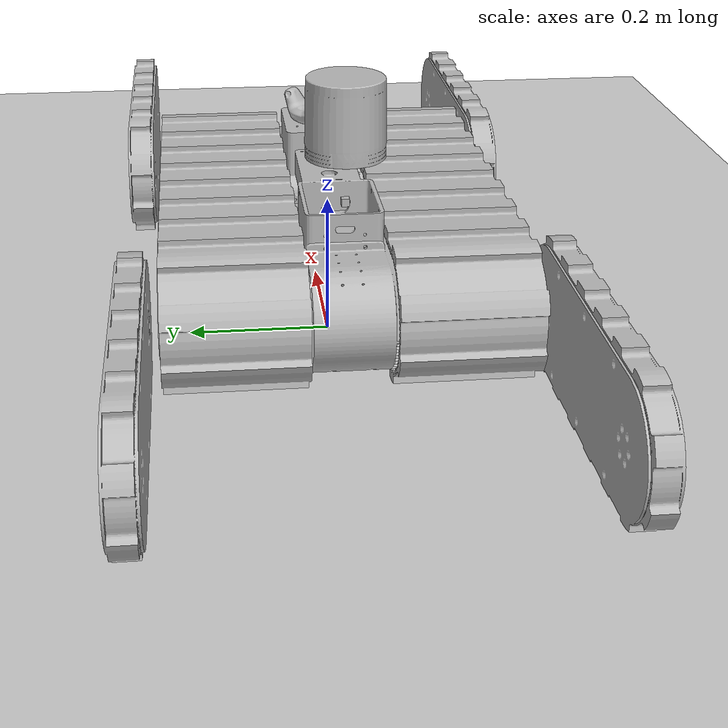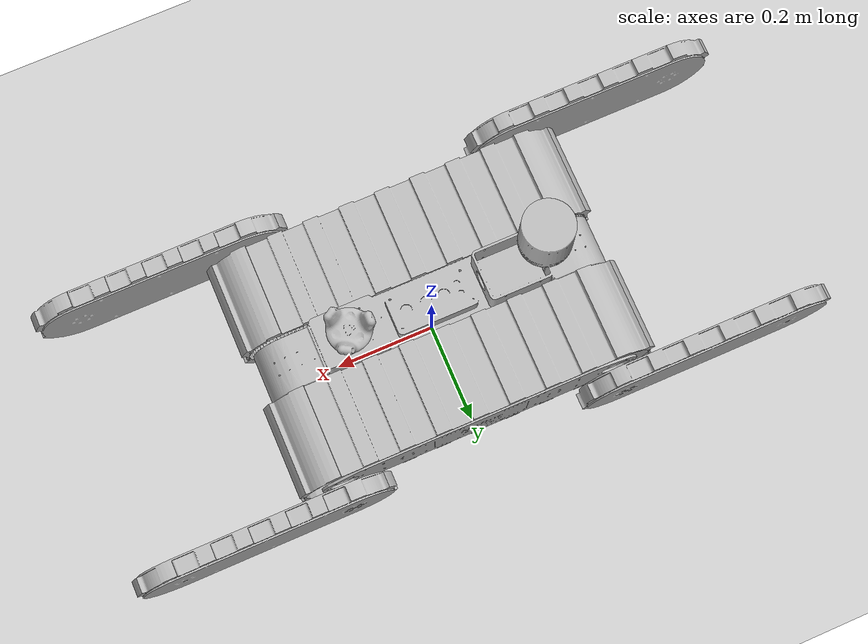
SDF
<sdf version="1.6">
 <world name="NuBot_Pumbaa_labfield">
  <include><uri>model://sun</uri></include>
  <include><uri>model://ground_plane</uri></include>
  <model name="NuBot_Pumbaa_v2">
   <pose>0 0 0.15 0 0 0</pose>
   <include><uri>model://NuBot_Pumbaa_v2</uri></include>
   <include><uri>model://RS_Helios_5515</uri><pose>-0.221 0 0.2545 0 0 3.1416</pose></include>
   <joint name="lidar_joint" type="fixed">
    <parent>NuBot_Pumbaa_v2::base_link</parent>
    <child>RS_Helios_5515::base_link</child>
   </joint>
   <include><uri>model://IMU</uri><pose>-0.221 0 0.131 0 0 3.1416</pose></include>
   <joint name="imu_joint" type="fixed">
    <parent>NuBot_Pumbaa_v2::base_link</parent>
    <child>IMU::base_link</child>
   </joint>
  </model>
 </world>
</sdf>

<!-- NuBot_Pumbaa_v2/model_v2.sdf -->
<sdf version='1.6'>
  <model name='NuBot_Pumbaa_v2'>
    <static>false</static>
    <allow_auto_disable>1</allow_auto_disable>

    <!--base_link-->
    <link name='base_link'>
      <pose frame=''>0 0 0 0 0 0</pose>
      <inertial>
        <pose frame=''>0 0 0 0 0 0</pose>
        <mass>20</mass>
        <inertia>
          <ixx>0.203664</ixx>
          <ixy>0</ixy>
          <ixz>0</ixz>
          <iyy>0.136197</iyy>
          <iyz>0</iyz>
          <izz>0.319921</izz>
        </inertia>
      </inertial>
      <self_collide>0</self_collide>
      <gravity>1</gravity>
      <kinematic>0</kinematic>
      <enable_wind>0</enable_wind>

      <collision name='base_link_collision_1'>
        <max_contacts>10</max_contacts>
        <pose frame=''>0.276 0 0 1.5708 0 0</pose>
        <geometry>
          <cylinder>
            <radius>0.07</radius>
            <length>0.11</length>
          </cylinder>
        </geometry>
        <surface>
          <friction>
            <ode>
              <mu>1</mu>
              <mu2>1</mu2>
              <fdir1>0 1 0</fdir1>
            </ode>
          </friction>
        </surface>
      </collision>
      <collision name='base_link_collision_2'>
        <max_contacts>10</max_contacts>
        <pose frame=''>-0.276 0 0 1.5708 0 0</pose>
        <geometry>
          <cylinder>
            <radius>0.07</radius>
            <length>0.11</length>
          </cylinder>
        </geometry>
        <surface>
          <friction>
            <ode>
              <mu>1</mu>
              <mu2>1</mu2>
              <fdir1>0 1 0</fdir1>
            </ode>
          </friction>
        </surface>
      </collision>
      <collision name='base_link_collision'>
        <max_contacts>10</max_contacts>
        <pose frame=''>0 0 0 1.5708 0 1.5708</pose>
        <geometry>
          <box>
            <size>0.11 0.14 0.552</size>
          </box>
        </geometry>
        <surface>
          <friction>
            <ode>
              <mu>1</mu>
              <mu2>1</mu2>
              <fdir1>0 1 0</fdir1>
            </ode>
          </friction>
        </surface>
      </collision>
      <visual name='base_link_visual'>
        <pose frame=''>0 0 0 0 0 0</pose>
        <geometry>
          <mesh>
            <scale>1 1 1</scale>
            <uri>model://NuBot_Pumbaa_v2/meshes/base_link.STL</uri>
          </mesh>
        </geometry>
      </visual>
      <visual name='base_link_vive_link_visual'>
        <pose frame=''>0.16175 0 0.138 0 0 0</pose>
        <geometry>
          <mesh>
            <scale>1 1 1</scale>
            <uri>model://NuBot_Pumbaa_v2/meshes/vive_link.STL</uri>
          </mesh>
        </geometry>
      </visual>
    </link>

    <!--left_track-->
    <link name='left_track_link'>
      <pose frame=''>0 0.14 0 0 0 0</pose>
      <inertial>
        <pose frame=''>0 0 0 0 0 0</pose>
        <mass>10</mass>
        <inertia>
          <ixx>0.15</ixx>
          <ixy>0</ixy>
          <ixz>0</ixz>
          <iyy>0.9</iyy>
          <iyz>0</iyz>
          <izz>0.9</izz>
        </inertia>
      </inertial>>
      <gravity>1</gravity>
      <kinematic>0</kinematic>
      <self_collide>0</self_collide>
      <enable_wind>0</enable_wind>

      <visual name='left_track_visual'>
        <pose frame=''>0 -0.14 0 0 0 0</pose>
        <geometry>
          <mesh>
            <scale>1 1 1</scale>
            <uri>model://NuBot_Pumbaa_v2/meshes/left_track_link.STL</uri>
          </mesh>
        </geometry>>
      </visual>
      <collision name='left_track_collision_1'>
        <max_contacts>10</max_contacts>
        <pose frame=''>0.276 0 0 1.5708 0 0</pose>
        <geometry>
          <cylinder>
            <radius>0.09</radius>
            <length>0.18</length>
          </cylinder>
        </geometry>
        <surface>
          <friction>
            <ode>
              <mu>0.7</mu>
              <mu2>150</mu2>
              <fdir1>0 1 0</fdir1>
            </ode>
          </friction>
        </surface>
      </collision>
      <collision name='left_track_collision_2'>
        <max_contacts>10</max_contacts>
        <pose frame=''>-0.276 0 0 1.5708 0 0</pose>
        <geometry>
          <cylinder>
            <radius>0.09</radius>
            <length>0.18</length>
          </cylinder>
        </geometry>
        <surface>
          <friction>
            <ode>
              <mu>0.7</mu>
              <mu2>150</mu2>
              <fdir1>0 1 0</fdir1>
            </ode>
          </friction>
        </surface>
      </collision>
      <collision name='left_track_collision'>
        <max_contacts>10</max_contacts>
        <pose frame=''>0 0 0 1.5708 0 1.5708</pose>
        <geometry>
          <box>
            <size>0.18 0.18 0.552</size>
          </box>
        </geometry>
        <surface>
          <friction>
            <ode>
              <mu>0.7</mu>
              <mu2>150</mu2>
              <fdir1>0 1 0</fdir1>
            </ode>
          </friction>
        </surface>
      </collision>
    </link>

    <!--right_track-->
    <link name='right_track_link'>
      <pose frame=''>0 -0.14 0 0 0 0</pose>
      <inertial>
        <pose frame=''>0 0 0 0 0 0</pose>
        <mass>10</mass>
        <inertia>
          <ixx>0.15</ixx>
          <ixy>0</ixy>
          <ixz>0</ixz>
          <iyy>0.9</iyy>
          <iyz>0</iyz>
          <izz>0.9</izz>
        </inertia>
      </inertial>
      <gravity>1</gravity>
      <kinematic>0</kinematic>
      <self_collide>0</self_collide>
      <enable_wind>0</enable_wind>

      <visual name='right_track_visual'>
        <pose frame=''>0 0.14 0 0 0 0</pose>
        <geometry>
          <mesh>
            <scale>1 1 1</scale>
            <uri>model://NuBot_Pumbaa_v2/meshes/right_track_link.STL</uri>
          </mesh>
        </geometry>
      </visual>
      <collision name='right_track_collision_1'>
        <max_contacts>10</max_contacts>
        <pose frame=''>0.276 0 0 1.5708 0 0</pose>
        <geometry>
          <cylinder>
            <radius>0.09</radius>
            <length>0.18</length>
          </cylinder>
        </geometry>
        <surface>
          <friction>
            <ode>
              <mu>0.7</mu>
              <mu2>150</mu2>
              <fdir1>0 1 0</fdir1>
            </ode>
          </friction>
        </surface>
      </collision>
      <collision name='right_track_collision'>
        <max_contacts>10</max_contacts>
        <pose frame=''>0 0 0 1.5708 0 1.5708</pose>
        <geometry>
          <box>
            <size>0.18 0.18 0.552</size>
          </box>
        </geometry>
        <surface>
          <friction>
            <ode>
              <mu>0.7</mu>
              <mu2>150</mu2>
              <fdir1>0 1 0</fdir1>
            </ode>
          </friction>
        </surface>
      </collision>
      <collision name='right_track_collision_2'>
        <max_contacts>10</max_contacts>
        <pose frame=''>-0.276 0 0 1.5708 0 0</pose>
        <geometry>
          <cylinder>
            <radius>0.09</radius>
            <length>0.18</length>
          </cylinder>
        </geometry>
        <surface>
          <friction>
            <ode>
              <mu>0.7</mu>
              <mu2>150</mu2>
              <fdir1>0 1 0</fdir1>
            </ode>
          </friction>
        </surface>
      </collision>
    </link>

    <!--main_track joints-->
    <joint name='left_track_joint' type='fixed'>
      <parent>base_link</parent>
      <child>left_track_link</child>
    </joint>
    <joint name='right_track_joint' type='fixed'>
      <parent>base_link</parent>
      <child>right_track_link</child>
    </joint>

    <!--rear_left_flipper-->
    <link name='rear_left_flipper_link'>
      <pose frame=''>-0.276 0.25 0 0 0 0</pose>
      <inertial>
        <pose frame=''>-0.16867 0.015987 0 0 0 0</pose>
        <mass>2.5</mass>
        <inertia>
          <ixx>0.002449</ixx>
          <ixy>0</ixy>
          <ixz>0</ixz>
          <iyy>0.02168</iyy>
          <iyz>0</iyz>
          <izz>0.019288</izz>
        </inertia>
      </inertial>
      <gravity>1</gravity>
      <velocity_decay/>
      <self_collide>0</self_collide>
      <kinematic>0</kinematic>
      <enable_wind>0</enable_wind>

      <collision name='rear_left_flipper_collision_large_wheel_collision'>
        <max_contacts>20</max_contacts>
        <pose frame=''>0 0.016 0 1.5708 0 0</pose>
        <geometry>
          <cylinder>
            <radius>0.09</radius>
            <length>0.038</length>
          </cylinder>
        </geometry>
        <surface>
          <friction>
            <ode>
              <mu>0.7</mu>
              <mu2>150</mu2>
              <fdir1>0 1 0</fdir1>
            </ode>
          </friction>
        </surface>
      </collision>
      <collision name='rear_left_flipper_collision_small_wheel_collision'>
        <max_contacts>20</max_contacts>
        <pose frame=''>-0.336 0.016 0 1.5708 0 0</pose>
        <geometry>
          <cylinder>
            <radius>0.09</radius>
            <length>0.038</length>
          </cylinder>
        </geometry>
        <surface>
          <friction>
            <ode>
              <mu>0.7</mu>
              <mu2>150</mu2>
              <fdir1>0 1 0</fdir1>
            </ode>
          </friction>
        </surface>
      </collision>
      <collision name='rear_left_flipper_collision_middle_bar_collision'>
        <max_contacts>20</max_contacts>
        <pose frame=''>-0.168 0.016 0 0 0 0</pose>
        <geometry>
          <box>
            <size>0.336 0.038 0.18</size>
          </box>
        </geometry>
        <surface>
          <friction>
            <ode>
              <mu>0.7</mu>
              <mu2>150</mu2>
              <fdir1>0 1 0</fdir1>
            </ode>
          </friction>
        </surface>
      </collision>
      <visual name='rear_left_flipper_visual'>
        <pose frame=''>0 0 0 0 0 0</pose>
        <geometry>
          <mesh>
            <scale>1 1 1</scale>
            <uri>model://NuBot_Pumbaa_v2/meshes/back_left_fin_link.STL</uri>
          </mesh>
        </geometry>
      </visual>
    </link>
    <joint name='rear_left_flipper_joint' type='revolute'>
      <child>rear_left_flipper_link</child>
      <parent>base_link</parent>
      <pose frame=''>0 0 0 0 0 0</pose>
      <axis>
        <xyz>0 1 0</xyz>
        <limit>
          <lower>-3</lower>
          <upper>3</upper>
          <effort>-1</effort>
          <velocity>0.3</velocity>
        </limit>
        <dynamics>
          <spring_reference>0</spring_reference>
          <spring_stiffness>0</spring_stiffness>
          <damping>10</damping>
          <friction>0</friction>
        </dynamics>
        <use_parent_model_frame>1</use_parent_model_frame>
      </axis>
      <physics>
        <ode>
          <implicit_spring_damper>1</implicit_spring_damper>
          <cfm_damping>1</cfm_damping>
          <limit>
            <cfm>0</cfm>
            <erp>0.2</erp>
          </limit>
        </ode>
      </physics>
    </joint>

    <!--rear_right_flipper-->
    <link name='rear_right_flipper_link'>
      <pose frame=''>-0.276 -0.25 0 0 0 0</pose>
      <inertial>
        <pose frame=''>-0.16867 -0.015987 0 0 0 0</pose>
        <mass>2.5</mass>
        <inertia>
          <ixx>0.002449</ixx>
          <ixy>0</ixy>
          <ixz>0</ixz>
          <iyy>0.02168</iyy>
          <iyz>0</iyz>
          <izz>0.019288</izz>
        </inertia>
      </inertial>
      <gravity>1</gravity>
      <velocity_decay/>
      <self_collide>1</self_collide>
      <kinematic>0</kinematic>
      <enable_wind>0</enable_wind>

      <collision name='rear_right_flipper_collision_large_wheel_collision'>
        <max_contacts>20</max_contacts>
        <pose frame=''>0 -0.016 0 1.5708 0 0</pose>
        <geometry>
          <cylinder>
            <radius>0.09</radius>
            <length>0.038</length>
          </cylinder>
        </geometry>
        <surface>
          <friction>
            <ode>
              <mu>0.7</mu>
              <mu2>150</mu2>
              <fdir1>0 1 0</fdir1>
            </ode>
          </friction>
        </surface>
      </collision>
      <collision name='rear_right_flipper_collision_small_wheel_collision'>
        <max_contacts>20</max_contacts>
        <pose frame=''>-0.336 -0.016 0 1.5708 0 0</pose>
        <geometry>
          <cylinder>
            <radius>0.09</radius>
            <length>0.038</length>
          </cylinder>
        </geometry>
        <surface>
          <friction>
            <ode>
              <mu>0.7</mu>
              <mu2>150</mu2>
              <fdir1>0 1 0</fdir1>
            </ode>
          </friction>
        </surface>
      </collision>
      <collision name='rear_right_flipper_collision_middle_bar_collision'>
        <max_contacts>20</max_contacts>
        <pose frame=''>-0.168 -0.016 0 0 0 -3.1416</pose>
        <geometry>
          <box>
            <size>0.336 0.038 0.18</size>
          </box>
        </geometry>
        <surface>
          <friction>
            <ode>
              <mu>0.7</mu>
              <mu2>150</mu2>
              <fdir1>0 1 0</fdir1>
            </ode>
          </friction>
        </surface>
      </collision>
      <visual name='rear_right_flipper_visual'>
        <pose frame=''>0 0 0 0 0 0</pose>
        <geometry>
          <mesh>
            <scale>1 1 1</scale>
            <uri>model://NuBot_Pumbaa_v2/meshes/back_right_fin_link.STL</uri>
          </mesh>
        </geometry>
      </visual>
    </link>
    <joint name='rear_right_flipper_joint' type='revolute'>
      <child>rear_right_flipper_link</child>
      <parent>base_link</parent>
      <pose frame=''>0 0 0 0 0 0</pose>
      <axis>
        <xyz>0 1 0</xyz>
        <limit>
          <lower>-3</lower>
          <upper>3</upper>
          <effort>-1</effort>
          <velocity>0.3</velocity>
        </limit>
        <dynamics>
          <spring_reference>0</spring_reference>
          <spring_stiffness>0</spring_stiffness>
          <damping>10</damping>
          <friction>0</friction>
        </dynamics>
        <use_parent_model_frame>1</use_parent_model_frame>
      </axis>
      <physics>
        <ode>
          <implicit_spring_damper>1</implicit_spring_damper>
          <cfm_damping>1</cfm_damping>
          <limit>
            <cfm>0</cfm>
            <erp>0.2</erp>
          </limit>
        </ode>
      </physics>
    </joint>

    <!--front_left_flipper-->
    <link name='front_left_flipper_link'>
      <pose frame=''>0.276 0.25 0 0 0 0</pose>
      <inertial>
        <pose frame=''>0.16867 0.015987 0 0 0 0</pose>
        <mass>2.5</mass>
        <inertia>
          <ixx>0.002449</ixx>
          <ixy>0</ixy>
          <ixz>0</ixz>
          <iyy>0.02168</iyy>
          <iyz>0</iyz>
          <izz>0.019288</izz>
        </inertia>
      </inertial>
      <gravity>1</gravity>
      <velocity_decay/>
      <self_collide>1</self_collide>
      <kinematic>0</kinematic>
      <enable_wind>0</enable_wind>

      <collision name='front_left_flipper_collision_large_wheel_collision'>
        <max_contacts>20</max_contacts>
        <pose frame=''>0 0.016 0 1.5708 0 0</pose>
        <geometry>
          <cylinder>
            <radius>0.09</radius>
            <length>0.038</length>
          </cylinder>
        </geometry>
        <surface>
          <friction>
            <ode>
              <mu>0.7</mu>
              <mu2>150</mu2>
              <fdir1>0 1 0</fdir1>
            </ode>
          </friction>
        </surface>
      </collision>
      <collision name='front_left_flipper_collision_small_wheel_collision'>
        <max_contacts>20</max_contacts>
        <pose frame=''>0.336 0.016 0 1.5708 0 0</pose>
        <geometry>
          <cylinder>
            <radius>0.09</radius>
            <length>0.038</length>
          </cylinder>
        </geometry>
        <surface>
          <friction>
            <ode>
              <mu>0.7</mu>
              <mu2>150</mu2>
              <fdir1>0 1 0</fdir1>
            </ode>
          </friction>
        </surface>
      </collision>
      <collision name='front_left_flipper_collision_middle_bar_collision'>
        <max_contacts>20</max_contacts>
        <pose frame=''>0.168 0.016 0 0 0 0</pose>
        <geometry>
          <box>
            <size>0.336 0.038 0.18</size>
          </box>
        </geometry>
        <surface>
          <friction>
            <ode>
              <mu>0.7</mu>
              <mu2>150</mu2>
              <fdir1>0 1 0</fdir1>
            </ode>
          </friction>
        </surface>
      </collision>
      <visual name='front_left_flipper_visual'>
        <pose frame=''>0 0 0 0 0 0</pose>
        <geometry>
          <mesh>
            <scale>1 1 1</scale>
            <uri>model://NuBot_Pumbaa_v2/meshes/front_left_fin_link.STL</uri>
          </mesh>
        </geometry>
      </visual>
    </link>
    <joint name='front_left_flipper_joint' type='revolute'>
      <child>front_left_flipper_link</child>
      <parent>base_link</parent>
      <pose frame=''>0 0 0 0 0 0</pose>
      <axis>
        <xyz>0 1 0</xyz>
        <limit>
          <lower>-3</lower>
          <upper>3</upper>
          <effort>-1</effort>
          <velocity>0.3</velocity>
        </limit>
        <dynamics>
          <spring_reference>0</spring_reference>
          <spring_stiffness>0</spring_stiffness>
          <damping>10</damping>
          <friction>0</friction>
        </dynamics>
        <use_parent_model_frame>1</use_parent_model_frame>
      </axis>
      <physics>
        <ode>
          <implicit_spring_damper>1</implicit_spring_damper>
          <cfm_damping>1</cfm_damping>
          <limit>
            <cfm>0</cfm>
            <erp>0.2</erp>
          </limit>
        </ode>
      </physics>
    </joint>

    <!--front_right_flipper-->
    <link name='front_right_flipper_link'>
      <pose frame=''>0.276 -0.25 0 0 0 0</pose>
      <inertial>
        <pose frame=''>0.16867 -0.015987 0 0 0 0</pose>
        <mass>2.5</mass>
        <inertia>
          <ixx>0.002449</ixx>
          <ixy>0</ixy>
          <ixz>0</ixz>
          <iyy>0.02168</iyy>
          <iyz>0</iyz>
          <izz>0.019288</izz>
        </inertia>
      </inertial>
      <gravity>1</gravity>
      <velocity_decay/>
      <self_collide>1</self_collide>
      <kinematic>0</kinematic>
      <enable_wind>0</enable_wind>

      <collision name='front_right_flipper_collision_large_wheel_collision'>
        <max_contacts>20</max_contacts>
        <pose frame=''>0 -0.016 0 1.5708 0 0</pose>
        <geometry>
          <cylinder>
            <radius>0.09</radius>
            <length>0.038</length>
          </cylinder>
        </geometry>
        <surface>
          <friction>
            <ode>
              <mu>0.7</mu>
              <mu2>150</mu2>
              <fdir1>0 1 0</fdir1>
            </ode>
          </friction>
        </surface>
      </collision>
      <collision name='front_right_flipper_collision_small_wheel_collision'>
        <max_contacts>20</max_contacts>
        <pose frame=''>0.336 -0.016 0 1.5708 0 0</pose>
        <geometry>
          <cylinder>
            <radius>0.09</radius>
            <length>0.038</length>
          </cylinder>
        </geometry>
        <surface>
          <friction>
            <ode>
              <mu>0.7</mu>
              <mu2>150</mu2>
              <fdir1>0 1 0</fdir1>
            </ode>
          </friction>
        </surface>
      </collision>
      <collision name='front_right_flipper_collision_middle_bar_collision'>
        <max_contacts>20</max_contacts>
        <pose frame=''>0.168 -0.016 0 0 0 -3.1416</pose>
        <geometry>
          <box>
            <size>0.336 0.038 0.18</size>
          </box>
        </geometry>
        <surface>
          <friction>
            <ode>
              <mu>0.7</mu>
              <mu2>150</mu2>
              <fdir1>0 1 0</fdir1>
            </ode>
          </friction>
        </surface>
      </collision>
      <visual name='front_right_flipper_link_visual'>
        <pose frame=''>0 0 0 0 0 0</pose>
        <geometry>
          <mesh>
            <scale>1 1 1</scale>
            <uri>model://NuBot_Pumbaa_v2/meshes/front_right_fin_link.STL</uri>
          </mesh>
        </geometry>
      </visual>
    </link>
    <joint name='front_right_flipper_joint' type='revolute'>
      <child>front_right_flipper_link</child>
      <parent>base_link</parent>
      <pose frame=''>0 0 0 0 0 0</pose>
      <axis>
        <xyz>0 1 0</xyz>
        <limit>
          <lower>-3</lower>
          <upper>3</upper>
          <effort>-1</effort>
          <velocity>0.3</velocity>
        </limit>
        <dynamics>
          <spring_reference>0</spring_reference>
          <spring_stiffness>0</spring_stiffness>
          <damping>10</damping>
          <friction>0</friction>
        </dynamics>
        <use_parent_model_frame>1</use_parent_model_frame>
      </axis>
      <physics>
        <ode>
          <implicit_spring_damper>1</implicit_spring_damper>
          <cfm_damping>1</cfm_damping>
          <limit>
            <cfm>0</cfm>
            <erp>0.2</erp>
          </limit>
        </ode>
      </physics>
    </joint>

    <plugin name='NuBot_Pumbaa_Gazebo_Plugin' filename='libnubot_pumbaa_plugin.so'>
      <!--The link tags of tracks-->
      <body>base_link</body>
      <left_track>left_track_link</left_track>
      <right_track>right_track_link</right_track>
      <left_flipper>front_left_flipper_link</left_flipper>
      <left_flipper>rear_left_flipper_link</left_flipper>
      <right_flipper>front_right_flipper_link</right_flipper>
      <right_flipper>rear_right_flipper_link</right_flipper>
      <!--The flippers' joint tag-->
      <front_left_flipper_j>front_left_flipper_joint</front_left_flipper_j>
      <rear_left_flipper_j>rear_left_flipper_joint</rear_left_flipper_j>
      <front_right_flipper_j>front_right_flipper_joint</front_right_flipper_j>
      <rear_right_flipper_j>rear_right_flipper_joint</rear_right_flipper_j>
      <!--The Mu/Mu2 of tracks, which influnce the simulating performance-->
      <track_mu>2</track_mu>
      <track_mu2>0.5</track_mu2>
      <!--The PID parameter of flippers position controll & initial position 1.5708 -->
      <flip_p>1500</flip_p>
      <flip_i>100</flip_i>
      <flip_d>0</flip_d>
      <flip_initial>1.0472</flip_initial>
      <!--The parameters of tracks-->
      <tracksSeparation>0.285</tracksSeparation>
      <steeringEfficiency>0.5</steeringEfficiency>
      <maxLinearSpeed>2.0</maxLinearSpeed>
      <maxAngularSpeed>1.5</maxAngularSpeed>
    </plugin>
  </model>
</sdf>

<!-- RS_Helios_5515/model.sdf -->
<sdf version="1.5">
  <model name="RS_Helios_5515">
    <static>false</static>
    <link name='base_link'>
      <pose frame=''>0 0 0 0 0 0</pose>
      <inertial>
        <pose frame=''>0 0.037848 -0.0035262 0 0 0</pose>
        <mass>0.9</mass>
        <inertia>
          <ixx>0.0025413</ixx>
          <ixy>0</ixy>
          <ixz>0</ixz>
          <iyy>0.0016941</iyy>
          <iyz>0</iyz>
          <izz>0.0024448</izz>
        </inertia>
      </inertial>
      <collision name='collision'>
        <pose frame=''>0 0 -0.02 0 0 0</pose>
        <geometry>
          <cylinder>
            <length>0.11</length>
            <radius>0.05</radius>
          </cylinder>
        </geometry>
        <max_contacts>10</max_contacts>
      </collision>
      <visual name='visual'>
        <pose frame=''>0 0 0 0 0 0</pose>
        <geometry>
          <mesh>
            <scale>1 1 1</scale>
            <uri>model://RS_Helios_5515/meshes/RS_Helios_frame.STL</uri>
          </mesh>
        </geometry>
      </visual>

      <gravity>1</gravity>
      <velocity_decay/>
      <self_collide>0</self_collide>
      <enable_wind>0</enable_wind>
      <kinematic>0</kinematic>

      <sensor name='RS_Helios' type='ray'><!--gpu_ray-->
        <visualize>false</visualize>
        <pose frame=''>0 0 0 0 0 0</pose>
        <update_rate>10</update_rate>
        <ray>
          <scan>
            <horizontal>
              <samples>900</samples>
              <resolution>1</resolution>
              <min_angle>-1.5708</min_angle>
              <max_angle>1.5708</max_angle>
            </horizontal>
            <vertical>
              <samples>32</samples>
              <resolution>1</resolution>
              <min_angle>-0.959931089</min_angle>
              <max_angle>0.261799</max_angle>
            </vertical>
          </scan>
          <range>
            <min>0.2</min>
            <max>70</max>
            <resolution>0.001</resolution>
          </range>
          <noise>
            <type>gaussian</type>
            <mean>0</mean>
            <stddev>0</stddev>
          </noise>
        </ray>
        <plugin name='gazebo_ros_laser_controller' filename='libgazebo_ros_velodyne_laser.so'>
        <!--libgazebo_ros_velodyne_gpu_laser-->
          <topicName>/lidar_points</topicName>
          <robotNamespace>/</robotNamespace>
          <frameName>rs_helios</frameName>
          <min_range>0.2</min_range>
          <max_range>70.0</max_range>
          <gaussianNoise>0.008</gaussianNoise>
        </plugin>
      </sensor>
    </link>
  </model>
</sdf>

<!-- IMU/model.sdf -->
<sdf version="1.5">
    <model name='IMU'>
        <static>false</static>
        <link name='base_link'>
            <inertial>
                <mass>0.1</mass>
            </inertial>
            <visual name='visual'>
            <geometry>
                <box>
                <size>0.01 0.01 0.01</size>
                </box>
            </geometry>
            </visual>
            <collision name='collision-base'>
            <pose frame=''>0 0 -0.0 0 -0 0</pose>
            <geometry>
                <box>
                <size>0.01 0.01 0.01</size>
                </box>
            </geometry>
            </collision>
        </link>
        <plugin name="imu_controller" filename="libhector_gazebo_ros_imu.so">
            <robotNamespace>/</robotNamespace>
            <updateRate>400.0</updateRate>
            <bodyName>base_link</bodyName>
            <topicName>imu/data</topicName>
            <accelDrift>0.005 0.005 0.005</accelDrift>
            <accelGaussianNoise>0.005 0.005 0.005</accelGaussianNoise>
            <rateDrift>0.005 0.005 0.005 </rateDrift>
            <rateGaussianNoise>0.005 0.005 0.005 </rateGaussianNoise>
            <headingDrift>0.005</headingDrift>
            <headingGaussianNoise>0.005</headingGaussianNoise>
        </plugin>
    </model>
</sdf>
